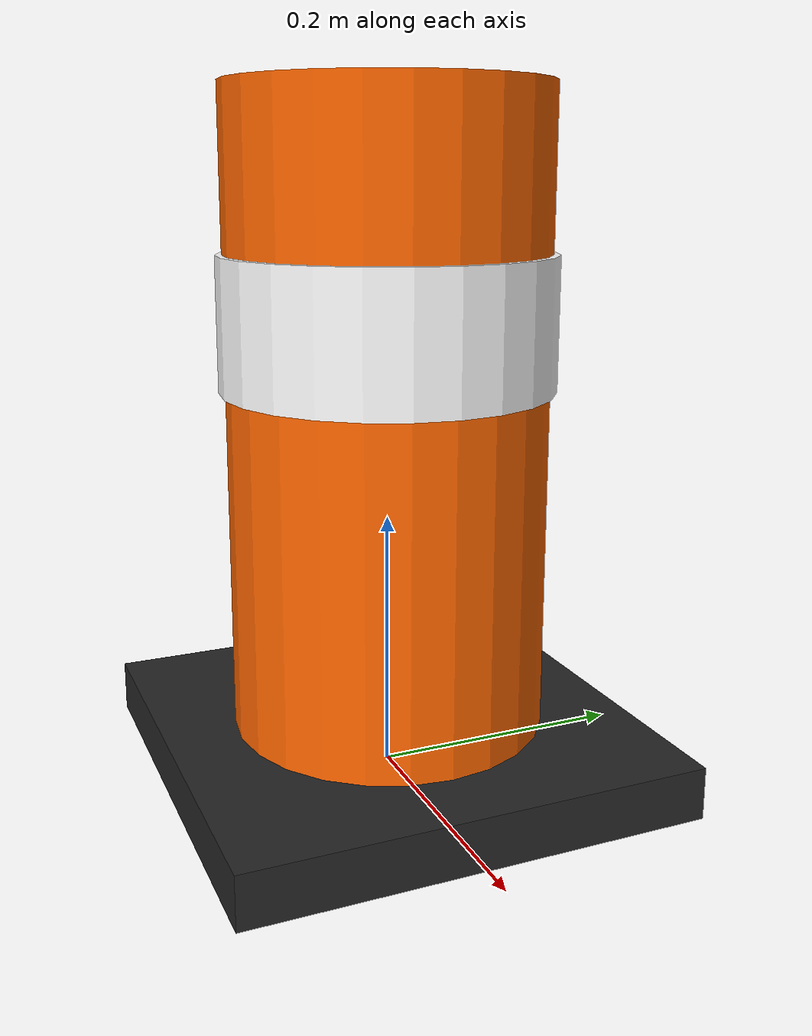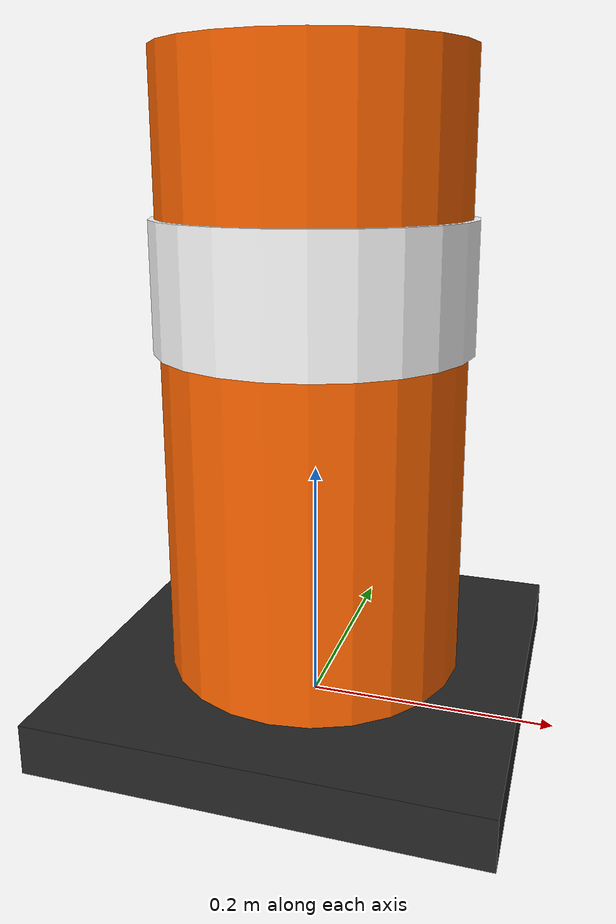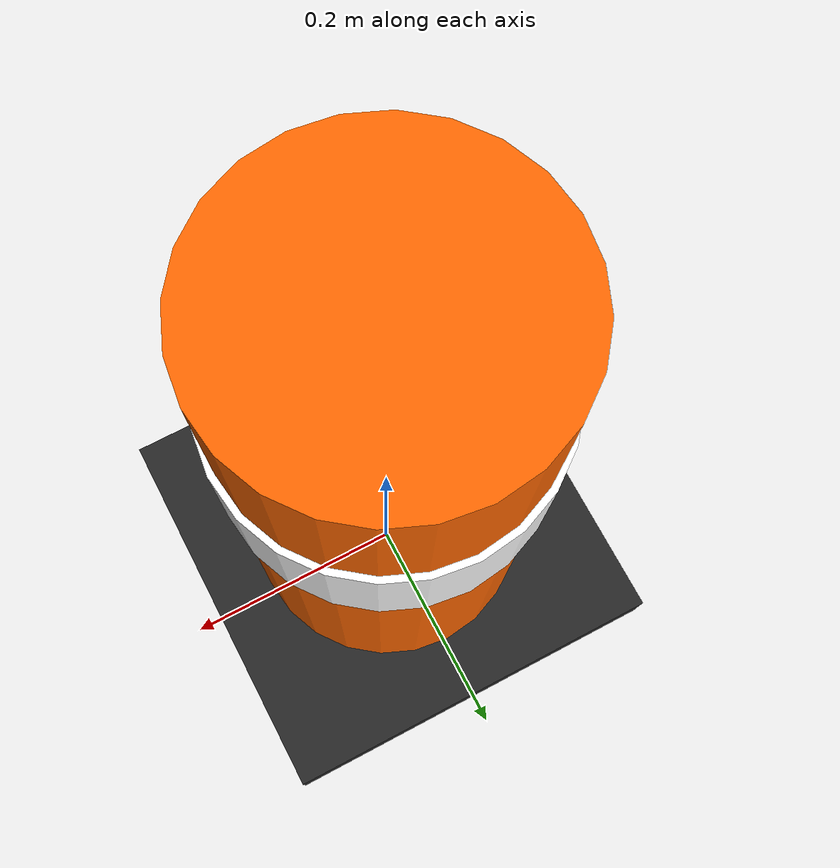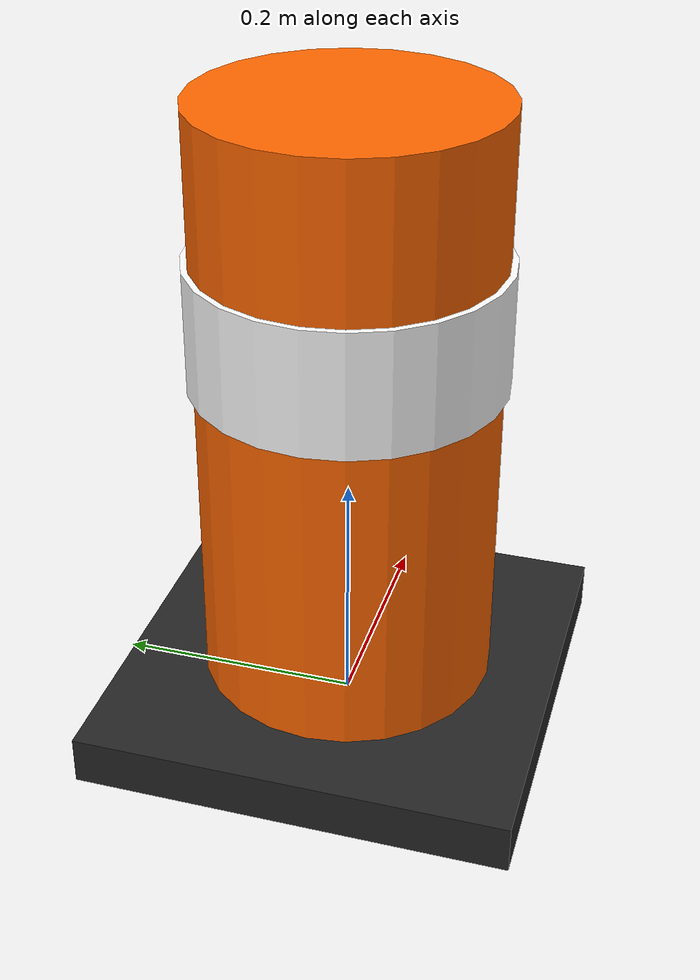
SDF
<?xml version="1.0" ?>
<sdf version="1.6">
  <model name="traffic_cone">
    <static>true</static>
    <link name="link">
      <!-- Base Plate -->
      <collision name="base_collision">
        <pose>0 0 0.02 0 0 0</pose>
        <geometry>
          <box>
            <size>0.35 0.35 0.04</size>
          </box>
        </geometry>
      </collision>
      <visual name="base_visual">
        <pose>0 0 0.02 0 0 0</pose>
        <geometry>
          <box>
            <size>0.35 0.35 0.04</size>
          </box>
        </geometry>
        <material>
          <ambient>0.1 0.1 0.1 1.0</ambient>
          <diffuse>0.15 0.15 0.15 1.0</diffuse>
        </material>
      </visual>

      <!-- Cone Body -->
      <collision name="cone_collision">
        <pose>0 0 0.27 0 0 0</pose>
        <geometry>
          <cylinder>
            <radius>0.12</radius>
            <length>0.50</length>
          </cylinder>
        </geometry>
      </collision>
      <visual name="cone_visual">
        <pose>0 0 0.27 0 0 0</pose>
        <geometry>
          <cylinder>
            <radius>0.12</radius>
            <length>0.50</length>
          </cylinder>
        </geometry>
        <material>
          <ambient>1.0 0.35 0.0 1.0</ambient>
          <diffuse>1.0 0.40 0.0 1.0</diffuse>
          <specular>0.5 0.5 0.5 1.0</specular>
        </material>
      </visual>

      <!-- Reflective Stripe -->
      <visual name="stripe_visual">
        <pose>0 0 0.35 0 0 0</pose>
        <geometry>
          <cylinder>
            <radius>0.125</radius>
            <length>0.10</length>
          </cylinder>
        </geometry>
        <material>
          <ambient>0.9 0.9 0.9 1.0</ambient>
          <diffuse>1.0 1.0 1.0 1.0</diffuse>
        </material>
      </visual>
    </link>
  </model>
</sdf>
